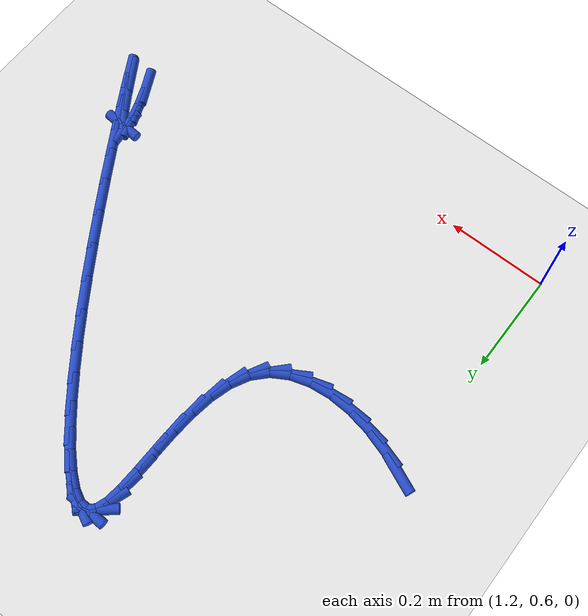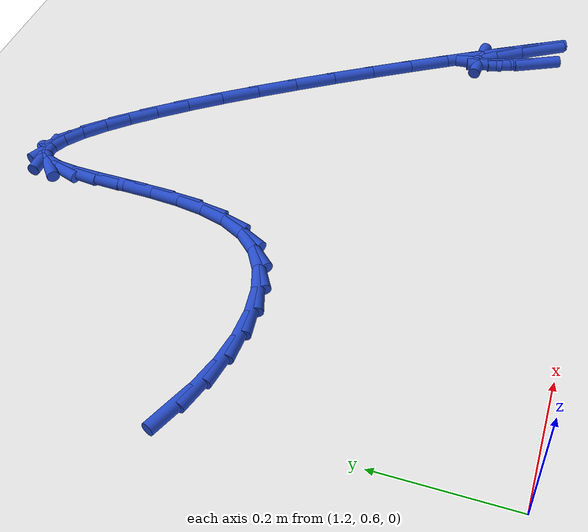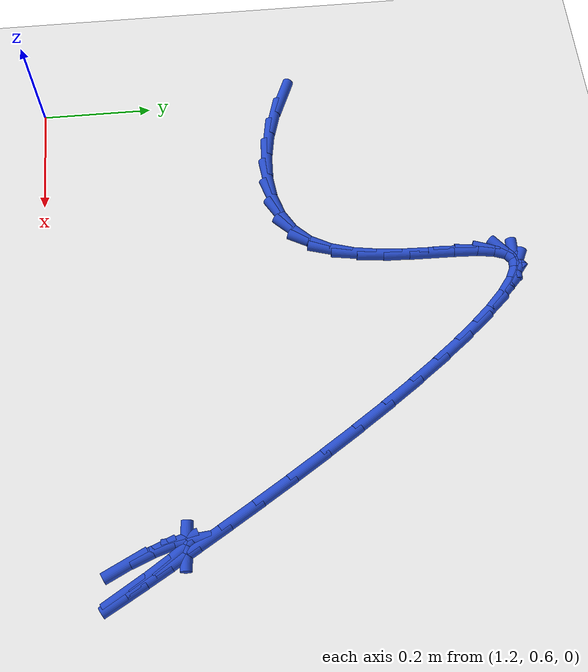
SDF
<sdf version="1.6">
 <world name="default">
  <model name="ground_plane">
   <static>1</static>
   <link name="link">
    <collision name="collision">
     <geometry><plane><normal>0 0 1</normal><size>100 100</size></plane></geometry>
     <surface><friction><ode><mu>100</mu><mu2>50</mu2></ode></friction></surface>
    </collision>
    <visual name="visual">
     <cast_shadows>0</cast_shadows>
     <geometry><plane><normal>0 0 1</normal><size>100 100</size></plane></geometry>
     <material>
      <script><uri>file://media/materials/scripts/gazebo.material</uri><name>Gazebo/WhiteGlow</name></script>
     </material>
    </visual>
   </link>
  </model>
  <model name="line">
   <link name="link_64">
    <pose>1.2022775340230665 1.0554085773034478 0.01 0 1.57 -0.40602014809166076</pose>
    <collision name="collision">
     <geometry><cylinder><radius>0.01</radius><length>0.08</length></cylinder></geometry>
    </collision>
    <visual name="visual">
     <material>
      <script><name>Gazebo/Blue</name><uri>file://media/materials/scripts/gazebo.material</uri></script>
     </material>
     <geometry><cylinder><radius>0.01</radius><length>0.08</length></cylinder></geometry>
    </visual>
   </link>
   <link name="link_65">
    <pose>1.2462953437600597 1.0364849825209161 0.01 0 1.57 -0.29135902797094676</pose>
    <collision name="collision">
     <geometry><cylinder><radius>0.01</radius><length>0.08</length></cylinder></geometry>
    </collision>
    <visual name="visual">
     <material>
      <script><name>Gazebo/Blue</name><uri>file://media/materials/scripts/gazebo.material</uri></script>
     </material>
     <geometry><cylinder><radius>0.01</radius><length>0.08</length></cylinder></geometry>
    </visual>
   </link>
   <link name="link_66">
    <pose>1.2917210322184682 1.022862116652297 0.01 0 1.57 -0.17174383451556846</pose>
    <collision name="collision">
     <geometry><cylinder><radius>0.01</radius><length>0.08</length></cylinder></geometry>
    </collision>
    <visual name="visual">
     <material>
      <script><name>Gazebo/Blue</name><uri>file://media/materials/scripts/gazebo.material</uri></script>
     </material>
     <geometry><cylinder><radius>0.01</radius><length>0.08</length></cylinder></geometry>
    </visual>
   </link>
   <link name="link_67">
    <pose>1.3372286187957516 1.0149687083513228 0.01 0 1.57 -0.039182031223548366</pose>
    <collision name="collision">
     <geometry><cylinder><radius>0.01</radius><length>0.08</length></cylinder></geometry>
    </collision>
    <visual name="visual">
     <material>
      <script><name>Gazebo/Blue</name><uri>file://media/materials/scripts/gazebo.material</uri></script>
     </material>
     <geometry><cylinder><radius>0.01</radius><length>0.08</length></cylinder></geometry>
    </visual>
   </link>
   <link name="link_68">
    <pose>1.3814921228893657 1.0132334862717256 0.01 0 1.57 0.1158448416204335</pose>
    <collision name="collision">
     <geometry><cylinder><radius>0.01</radius><length>0.08</length></cylinder></geometry>
    </collision>
    <visual name="visual">
     <material>
      <script><name>Gazebo/Blue</name><uri>file://media/materials/scripts/gazebo.material</uri></script>
     </material>
     <geometry><cylinder><radius>0.01</radius><length>0.08</length></cylinder></geometry>
    </visual>
   </link>
   <link name="link_69">
    <pose>1.4231855638967694 1.0180851790672376 0.01 0 1.57 0.30422563138469555</pose>
    <collision name="collision">
     <geometry><cylinder><radius>0.01</radius><length>0.08</length></cylinder></geometry>
    </collision>
    <visual name="visual">
     <material>
      <script><name>Gazebo/Blue</name><uri>file://media/materials/scripts/gazebo.material</uri></script>
     </material>
     <geometry><cylinder><radius>0.01</radius><length>0.08</length></cylinder></geometry>
    </visual>
   </link>
   <link name="link_70">
    <pose>1.4609829612154217 1.0299525153915912 0.01 0 1.57 0.5351318994359345</pose>
    <collision name="collision">
     <geometry><cylinder><radius>0.01</radius><length>0.08</length></cylinder></geometry>
    </collision>
    <visual name="visual">
     <material>
      <script><name>Gazebo/Blue</name><uri>file://media/materials/scripts/gazebo.material</uri></script>
     </material>
     <geometry><cylinder><radius>0.01</radius><length>0.08</length></cylinder></geometry>
    </visual>
   </link>
   <link name="link_71">
    <pose>1.4935583342427794 1.0492642238985181 0.01 0 1.57 0.8071461688032678</pose>
    <collision name="collision">
     <geometry><cylinder><radius>0.01</radius><length>0.08</length></cylinder></geometry>
    </collision>
    <visual name="visual">
     <material>
      <script><name>Gazebo/Blue</name><uri>file://media/materials/scripts/gazebo.material</uri></script>
     </material>
     <geometry><cylinder><radius>0.01</radius><length>0.08</length></cylinder></geometry>
    </visual>
   </link>
   <link name="link_72">
    <pose>1.5195857023763009 1.076449033241751 0.01 0 1.57 1.0832902315650044</pose>
    <collision name="collision">
     <geometry><cylinder><radius>0.01</radius><length>0.08</length></cylinder></geometry>
    </collision>
    <visual name="visual">
     <material>
      <script><name>Gazebo/Blue</name><uri>file://media/materials/scripts/gazebo.material</uri></script>
     </material>
     <geometry><cylinder><radius>0.01</radius><length>0.08</length></cylinder></geometry>
    </visual>
   </link>
   <link name="link_73">
    <pose>1.5381779881284616 1.11151631469418 0.01 0 1.57 1.2844640253839126</pose>
    <collision name="collision">
     <geometry><cylinder><radius>0.01</radius><length>0.08</length></cylinder></geometry>
    </collision>
    <visual name="visual">
     <material>
      <script><name>Gazebo/Blue</name><uri>file://media/materials/scripts/gazebo.material</uri></script>
     </material>
     <geometry><cylinder><radius>0.01</radius><length>0.08</length></cylinder></geometry>
    </visual>
   </link>
   <link name="link_74">
    <pose>1.5503040417743772 1.1527021620582452 0.01 0 1.57 1.4141395153408352</pose>
    <collision name="collision">
     <geometry><cylinder><radius>0.01</radius><length>0.08</length></cylinder></geometry>
    </collision>
    <visual name="visual">
     <material>
      <script><name>Gazebo/Blue</name><uri>file://media/materials/scripts/gazebo.material</uri></script>
     </material>
     <geometry><cylinder><radius>0.01</radius><length>0.08</length></cylinder></geometry>
    </visual>
   </link>
   <link name="link_75">
    <pose>1.557423190929777 1.1977740342921945 0.01 0 1.57 1.494507045484413</pose>
    <collision name="collision">
     <geometry><cylinder><radius>0.01</radius><length>0.08</length></cylinder></geometry>
    </collision>
    <visual name="visual">
     <material>
      <script><name>Gazebo/Blue</name><uri>file://media/materials/scripts/gazebo.material</uri></script>
     </material>
     <geometry><cylinder><radius>0.01</radius><length>0.08</length></cylinder></geometry>
    </visual>
   </link>
   <link name="link_76">
    <pose>1.5609947661585308 1.2444993875374222 0.01 0 1.57 1.5386632714999435</pose>
    <collision name="collision">
     <geometry><cylinder><radius>0.01</radius><length>0.08</length></cylinder></geometry>
    </collision>
    <visual name="visual">
     <material>
      <script><name>Gazebo/Blue</name><uri>file://media/materials/scripts/gazebo.material</uri></script>
     </material>
     <geometry><cylinder><radius>0.01</radius><length>0.08</length></cylinder></geometry>
    </visual>
   </link>
   <link name="link_77">
    <pose>1.56247809802451 1.2906456779353237 0.01 0 1.57 1.5510821324916828</pose>
    <collision name="collision">
     <geometry><cylinder><radius>0.01</radius><length>0.08</length></cylinder></geometry>
    </collision>
    <visual name="visual">
     <material>
      <script><name>Gazebo/Blue</name><uri>file://media/materials/scripts/gazebo.material</uri></script>
     </material>
     <geometry><cylinder><radius>0.01</radius><length>0.08</length></cylinder></geometry>
    </visual>
   </link>
   <link name="link_78">
    <pose>1.5633325170915855 1.3339803616272947 0.01 0 1.57 1.5268232972844278</pose>
    <collision name="collision">
     <geometry><cylinder><radius>0.01</radius><length>0.08</length></cylinder></geometry>
    </collision>
    <visual name="visual">
     <material>
      <script><name>Gazebo/Blue</name><uri>file://media/materials/scripts/gazebo.material</uri></script>
     </material>
     <geometry><cylinder><radius>0.01</radius><length>0.08</length></cylinder></geometry>
    </visual>
   </link>
   <link name="link_79">
    <pose>1.5650173539236287 1.3722708947547293 0.01 0 1.57 1.443335875157329</pose>
    <collision name="collision">
     <geometry><cylinder><radius>0.01</radius><length>0.08</length></cylinder></geometry>
    </collision>
    <visual name="visual">
     <material>
      <script><name>Gazebo/Blue</name><uri>file://media/materials/scripts/gazebo.material</uri></script>
     </material>
     <geometry><cylinder><radius>0.01</radius><length>0.08</length></cylinder></geometry>
    </visual>
   </link>
   <link name="link_80">
    <pose>1.5689919390845097 1.4032847334590235 0.01 0 1.57 1.225981615338795</pose>
    <collision name="collision">
     <geometry><cylinder><radius>0.01</radius><length>0.08</length></cylinder></geometry>
    </collision>
    <visual name="visual">
     <material>
      <script><name>Gazebo/Blue</name><uri>file://media/materials/scripts/gazebo.material</uri></script>
     </material>
     <geometry><cylinder><radius>0.01</radius><length>0.08</length></cylinder></geometry>
    </visual>
   </link>
   <link name="link_81">
    <pose>1.5767156031380996 1.4247893338815723 0.01 0 1.57 0.6809598792912425</pose>
    <collision name="collision">
     <geometry><cylinder><radius>0.01</radius><length>0.08</length></cylinder></geometry>
    </collision>
    <visual name="visual">
     <material>
      <script><name>Gazebo/Blue</name><uri>file://media/materials/scripts/gazebo.material</uri></script>
     </material>
     <geometry><cylinder><radius>0.01</radius><length>0.08</length></cylinder></geometry>
    </visual>
   </link>
   <link name="link_82">
    <pose>1.5893524288314131 1.4350283242391486 0.01 0 1.57 -0.038838497038295984</pose>
    <collision name="collision">
     <geometry><cylinder><radius>0.01</radius><length>0.08</length></cylinder></geometry>
    </collision>
    <visual name="visual">
     <material>
      <script><name>Gazebo/Blue</name><uri>file://media/materials/scripts/gazebo.material</uri></script>
     </material>
     <geometry><cylinder><radius>0.01</radius><length>0.08</length></cylinder></geometry>
    </visual>
   </link>
   <link name="link_83">
    <pose>1.6067603418547112 1.4343518869073464 0.01 0 1.57 -0.4570348716094999</pose>
    <collision name="collision">
     <geometry><cylinder><radius>0.01</radius><length>0.08</length></cylinder></geometry>
    </collision>
    <visual name="visual">
     <material>
      <script><name>Gazebo/Blue</name><uri>file://media/materials/scripts/gazebo.material</uri></script>
     </material>
     <geometry><cylinder><radius>0.01</radius><length>0.08</length></cylinder></geometry>
    </visual>
   </link>
   <link name="link_84">
    <pose>1.6284361903996678 1.423692545644349 0.01 0 1.57 -0.6591435741152268</pose>
    <collision name="collision">
     <geometry><cylinder><radius>0.01</radius><length>0.08</length></cylinder></geometry>
    </collision>
    <visual name="visual">
     <material>
      <script><name>Gazebo/Blue</name><uri>file://media/materials/scripts/gazebo.material</uri></script>
     </material>
     <geometry><cylinder><radius>0.01</radius><length>0.08</length></cylinder></geometry>
    </visual>
   </link>
   <link name="link_85">
    <pose>1.6538768102988748 1.4039828441409143 0.01 0 1.57 -0.7699259685175515</pose>
    <collision name="collision">
     <geometry><cylinder><radius>0.01</radius><length>0.08</length></cylinder></geometry>
    </collision>
    <visual name="visual">
     <material>
      <script><name>Gazebo/Blue</name><uri>file://media/materials/scripts/gazebo.material</uri></script>
     </material>
     <geometry><cylinder><radius>0.01</radius><length>0.08</length></cylinder></geometry>
    </visual>
   </link>
   <link name="link_86">
    <pose>1.6825790373849276 1.376155326087799 0.01 0 1.57 -0.8387840640517336</pose>
    <collision name="collision">
     <geometry><cylinder><radius>0.01</radius><length>0.08</length></cylinder></geometry>
    </collision>
    <visual name="visual">
     <material>
      <script><name>Gazebo/Blue</name><uri>file://media/materials/scripts/gazebo.material</uri></script>
     </material>
     <geometry><cylinder><radius>0.01</radius><length>0.08</length></cylinder></geometry>
    </visual>
   </link>
   <link name="link_87">
    <pose>1.714039707490417 1.3411425351757604 0.01 0 1.57 -0.8857458050305964</pose>
    <collision name="collision">
     <geometry><cylinder><radius>0.01</radius><length>0.08</length></cylinder></geometry>
    </collision>
    <visual name="visual">
     <material>
      <script><name>Gazebo/Blue</name><uri>file://media/materials/scripts/gazebo.material</uri></script>
     </material>
     <geometry><cylinder><radius>0.01</radius><length>0.08</length></cylinder></geometry>
    </visual>
   </link>
   <link name="link_88">
    <pose>1.7477556564479377 1.2998770150955559 0.01 0 1.57 -0.9200702046058342</pose>
    <collision name="collision">
     <geometry><cylinder><radius>0.01</radius><length>0.08</length></cylinder></geometry>
    </collision>
    <visual name="visual">
     <material>
      <script><name>Gazebo/Blue</name><uri>file://media/materials/scripts/gazebo.material</uri></script>
     </material>
     <geometry><cylinder><radius>0.01</radius><length>0.08</length></cylinder></geometry>
    </visual>
   </link>
   <link name="link_89">
    <pose>1.7832237200900827 1.2532913095379417 0.01 0 1.57 -0.9465639448490066</pose>
    <collision name="collision">
     <geometry><cylinder><radius>0.01</radius><length>0.08</length></cylinder></geometry>
    </collision>
    <visual name="visual">
     <material>
      <script><name>Gazebo/Blue</name><uri>file://media/materials/scripts/gazebo.material</uri></script>
     </material>
     <geometry><cylinder><radius>0.01</radius><length>0.08</length></cylinder></geometry>
    </visual>
   </link>
   <link name="link_90">
    <pose>1.8199407342494447 1.2023179621936757 0.01 0 1.57 -0.9679687347214901</pose>
    <collision name="collision">
     <geometry><cylinder><radius>0.01</radius><length>0.08</length></cylinder></geometry>
    </collision>
    <visual name="visual">
     <material>
      <script><name>Gazebo/Blue</name><uri>file://media/materials/scripts/gazebo.material</uri></script>
     </material>
     <geometry><cylinder><radius>0.01</radius><length>0.08</length></cylinder></geometry>
    </visual>
   </link>
   <link name="link_91">
    <pose>1.8574034663244896 1.1478897250108773 0.01 0 1.57 -0.9856535064584846</pose>
    <collision name="collision">
     <geometry><cylinder><radius>0.01</radius><length>0.08</length></cylinder></geometry>
    </collision>
    <visual name="visual">
     <material>
      <script><name>Gazebo/Blue</name><uri>file://media/materials/scripts/gazebo.material</uri></script>
     </material>
     <geometry><cylinder><radius>0.01</radius><length>0.08</length></cylinder></geometry>
    </visual>
   </link>
   <link name="link_92">
    <pose>1.895082217664648 1.0910198908860664 0.01 0 1.57 -1.0000533226956536</pose>
    <collision name="collision">
     <geometry><cylinder><radius>0.01</radius><length>0.08</length></cylinder></geometry>
    </collision>
    <visual name="visual">
     <material>
      <script><name>Gazebo/Blue</name><uri>file://media/materials/scripts/gazebo.material</uri></script>
     </material>
     <geometry><cylinder><radius>0.01</radius><length>0.08</length></cylinder></geometry>
    </visual>
   </link>
   <link name="link_93">
    <pose>1.9323808776775453 1.0329238562020528 0.01 0 1.57 -1.0120121734503726</pose>
    <collision name="collision">
     <geometry><cylinder><radius>0.01</radius><length>0.08</length></cylinder></geometry>
    </collision>
    <visual name="visual">
     <material>
      <script><name>Gazebo/Blue</name><uri>file://media/materials/scripts/gazebo.material</uri></script>
     </material>
     <geometry><cylinder><radius>0.01</radius><length>0.08</length></cylinder></geometry>
    </visual>
   </link>
   <link name="link_94">
    <pose>1.9686930854027047 0.9748482110558017 0.01 0 1.57 -1.0222086323307829</pose>
    <collision name="collision">
     <geometry><cylinder><radius>0.01</radius><length>0.08</length></cylinder></geometry>
    </collision>
    <visual name="visual">
     <material>
      <script><name>Gazebo/Blue</name><uri>file://media/materials/scripts/gazebo.material</uri></script>
     </material>
     <geometry><cylinder><radius>0.01</radius><length>0.08</length></cylinder></geometry>
    </visual>
   </link>
   <link name="link_95">
    <pose>2.0034124798796493 0.9180395455442786 0.01 0 1.57 -1.0311469027078273</pose>
    <collision name="collision">
     <geometry><cylinder><radius>0.01</radius><length>0.08</length></cylinder></geometry>
    </collision>
    <visual name="visual">
     <material>
      <script><name>Gazebo/Blue</name><uri>file://media/materials/scripts/gazebo.material</uri></script>
     </material>
     <geometry><cylinder><radius>0.01</radius><length>0.08</length></cylinder></geometry>
    </visual>
   </link>
   <link name="link_96">
    <pose>2.035932700147904 0.8637444497644482 0.01 0 1.57 -1.039244985521734</pose>
    <collision name="collision">
     <geometry><cylinder><radius>0.01</radius><length>0.08</length></cylinder></geometry>
    </collision>
    <visual name="visual">
     <material>
      <script><name>Gazebo/Blue</name><uri>file://media/materials/scripts/gazebo.material</uri></script>
     </material>
     <geometry><cylinder><radius>0.01</radius><length>0.08</length></cylinder></geometry>
    </visual>
   </link>
   <link name="link_97">
    <pose>2.06564738524699 0.8132095138132747 0.01 0 1.57 -1.046916257245357</pose>
    <collision name="collision">
     <geometry><cylinder><radius>0.01</radius><length>0.08</length></cylinder></geometry>
    </collision>
    <visual name="visual">
     <material>
      <script><name>Gazebo/Blue</name><uri>file://media/materials/scripts/gazebo.material</uri></script>
     </material>
     <geometry><cylinder><radius>0.01</radius><length>0.08</length></cylinder></geometry>
    </visual>
   </link>
   <link name="link_98">
    <pose>2.091950174216433 0.7676813277877227 0.01 0 1.57 -1.0546927088487215</pose>
    <collision name="collision">
     <geometry><cylinder><radius>0.01</radius><length>0.08</length></cylinder></geometry>
    </collision>
    <visual name="visual">
     <material>
      <script><name>Gazebo/Blue</name><uri>file://media/materials/scripts/gazebo.material</uri></script>
     </material>
     <geometry><cylinder><radius>0.01</radius><length>0.08</length></cylinder></geometry>
    </visual>
   </link>
   <link name="link_99">
    <pose>2.114234706095755 0.7284064817847566 0.01 0 1.57 -1.0635251011521907</pose>
    <collision name="collision">
     <geometry><cylinder><radius>0.01</radius><length>0.08</length></cylinder></geometry>
    </collision>
    <visual name="visual">
     <material>
      <script><name>Gazebo/Blue</name><uri>file://media/materials/scripts/gazebo.material</uri></script>
     </material>
     <geometry><cylinder><radius>0.01</radius><length>0.08</length></cylinder></geometry>
    </visual>
   </link>
   <link name="link_106">
    <pose>2.1081835911971045 0.7303998341883734 0.01 0 1.57 -1.0296584936276747</pose>
    <collision name="collision">
     <geometry><cylinder><radius>0.01</radius><length>0.08</length></cylinder></geometry>
    </collision>
    <visual name="visual">
     <material>
      <script><name>Gazebo/Blue</name><uri>file://media/materials/scripts/gazebo.material</uri></script>
     </material>
     <geometry><cylinder><radius>0.01</radius><length>0.08</length></cylinder></geometry>
    </visual>
   </link>
   <link name="link_107">
    <pose>2.083805301430781 0.7709642408138582 0.01 0 1.57 -0.9980249790707081</pose>
    <collision name="collision">
     <geometry><cylinder><radius>0.01</radius><length>0.08</length></cylinder></geometry>
    </collision>
    <visual name="visual">
     <material>
      <script><name>Gazebo/Blue</name><uri>file://media/materials/scripts/gazebo.material</uri></script>
     </material>
     <geometry><cylinder><radius>0.01</radius><length>0.08</length></cylinder></geometry>
    </visual>
   </link>
   <link name="link_108">
    <pose>2.0608263728805873 0.8065968148833671 0.01 0 1.57 -0.9004884520337092</pose>
    <collision name="collision">
     <geometry><cylinder><radius>0.01</radius><length>0.08</length></cylinder></geometry>
    </collision>
    <visual name="visual">
     <material>
      <script><name>Gazebo/Blue</name><uri>file://media/materials/scripts/gazebo.material</uri></script>
     </material>
     <geometry><cylinder><radius>0.01</radius><length>0.08</length></cylinder></geometry>
    </visual>
   </link>
   <link name="link_109">
    <pose>2.043599841072053 0.8283267602026788 0.01 0 1.57 -0.07057548713610566</pose>
    <collision name="collision">
     <geometry><cylinder><radius>0.01</radius><length>0.08</length></cylinder></geometry>
    </collision>
    <visual name="visual">
     <material>
      <script><name>Gazebo/Blue</name><uri>file://media/materials/scripts/gazebo.material</uri></script>
     </material>
     <geometry><cylinder><radius>0.01</radius><length>0.08</length></cylinder></geometry>
    </visual>
   </link>
   <link name="link_110">
    <pose>2.0358039067356417 0.8288778773898906 0.01 0 1.57 -1.4797857633774743</pose>
    <collision name="collision">
     <geometry><cylinder><radius>0.01</radius><length>0.08</length></cylinder></geometry>
    </collision>
    <visual name="visual">
     <material>
      <script><name>Gazebo/Blue</name><uri>file://media/materials/scripts/gazebo.material</uri></script>
     </material>
     <geometry><cylinder><radius>0.01</radius><length>0.08</length></cylinder></geometry>
    </visual>
   </link>
   <link name="link_111">
    <pose>2.0375280589919846 0.8099856826693832 0.01 0 1.57 -1.2776856116986746</pose>
    <collision name="collision">
     <geometry><cylinder><radius>0.01</radius><length>0.08</length></cylinder></geometry>
    </collision>
    <visual name="visual">
     <material>
      <script><name>Gazebo/Blue</name><uri>file://media/materials/scripts/gazebo.material</uri></script>
     </material>
     <geometry><cylinder><radius>0.01</radius><length>0.08</length></cylinder></geometry>
    </visual>
   </link>
   <link name="link_112">
    <pose>2.0476735249335385 0.7763695707790076 0.01 0 1.57 -1.1898995503274499</pose>
    <collision name="collision">
     <geometry><cylinder><radius>0.01</radius><length>0.08</length></cylinder></geometry>
    </collision>
    <visual name="visual">
     <material>
      <script><name>Gazebo/Blue</name><uri>file://media/materials/scripts/gazebo.material</uri></script>
     </material>
     <geometry><cylinder><radius>0.01</radius><length>0.08</length></cylinder></geometry>
    </visual>
   </link>
   <link name="link_113">
    <pose>2.065140766123519 0.7327508587988281 0.01 0 1.57 -1.1196679883604057</pose>
    <collision name="collision">
     <geometry><cylinder><radius>0.01</radius><length>0.08</length></cylinder></geometry>
    </collision>
    <visual name="visual">
     <material>
      <script><name>Gazebo/Blue</name><uri>file://media/materials/scripts/gazebo.material</uri></script>
     </material>
     <geometry><cylinder><radius>0.01</radius><length>0.08</length></cylinder></geometry>
    </visual>
   </link>
  </model>
 </world>
</sdf>
